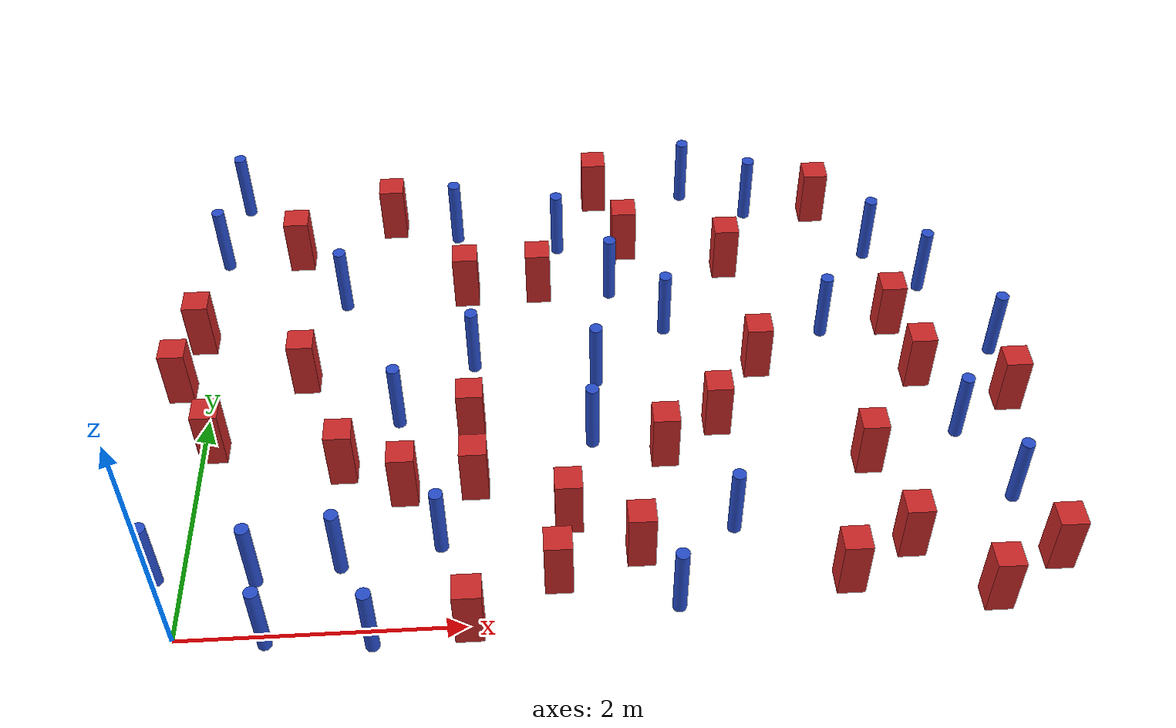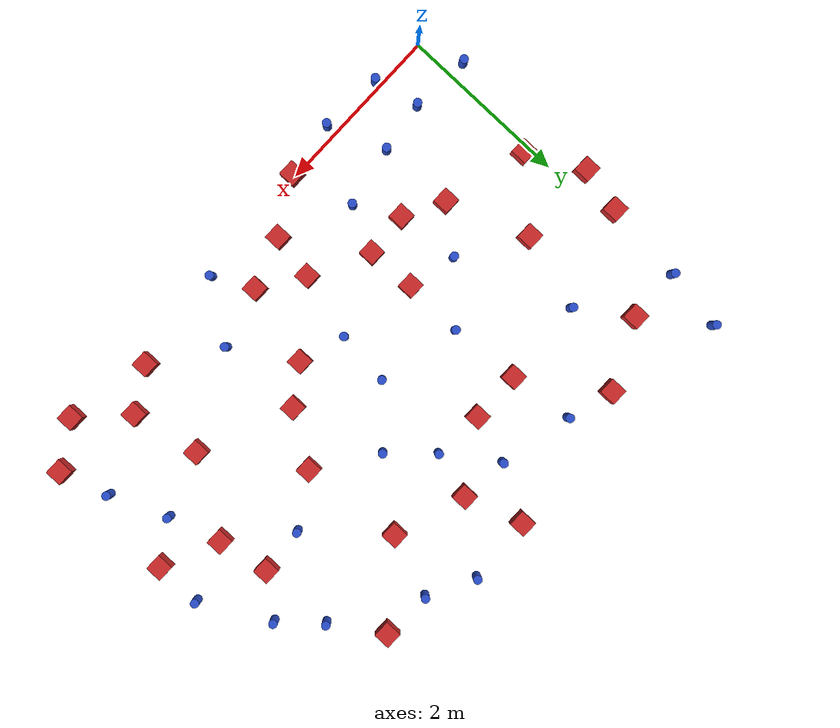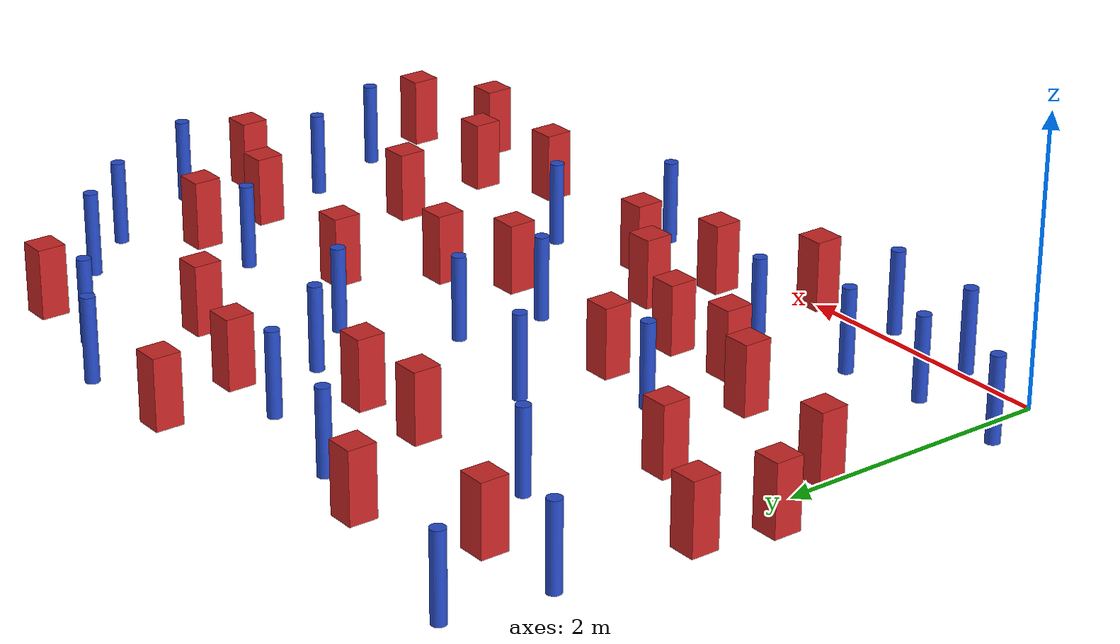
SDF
<sdf version="1.6">
 <model name="dense_64">
  <model name="pole_obstacle0">
   <static>true</static>
   <pose>2.04700699149 2.47416205247 2.88873142074e-08 -9.9053669043e-09 4.60219948975e-07 -1.2096599497e-07</pose>
   <link name="link">
    <pose>0 0 0.3 0 -0 0</pose>
    <inertial>
     <mass>1</mass>
     <inertia><ixx>0.145833</ixx><ixy>0</ixy><ixz>0</ixz><iyy>0.145833</iyy><iyz>0</iyz><izz>0.125</izz></inertia>
    </inertial>
    <collision name="collision">
     <geometry><cylinder><radius>0.05</radius><length>.6</length></cylinder></geometry>
    </collision>
    <visual name="visual">
     <geometry><cylinder><radius>0.05</radius><length>.6</length></cylinder></geometry>
     <material>
      <script><name>Gazebo/Blue</name><uri>file://media/materials/scripts/gazebo.material</uri></script>
     </material>
    </visual>
   </link>
  </model>
  <model name="square_post_obstacle2">
   <static>true</static>
   <pose>1.36068984229 4.20448335055 8.22691968438e-08 7.2212513382e-06 -7.54495500217e-07 2.29674213826e-05</pose>
   <link name="link">
    <pose>0 0 0.25 0 -0 0</pose>
    <inertial>
     <mass>100</mass>
     <inertia>
      <ixx>0.166667</ixx>
      <ixy>0</ixy>
      <ixz>0</ixz>
      <iyy>0.166667</iyy>
      <iyz>0</iyz>
      <izz>0.166667</izz>
     </inertia>
    </inertial>
    <collision name="collision"><geometry><box><size>.2 .2 .5</size></box></geometry></collision>
    <visual name="visual">
     <geometry><box><size>.2 .2 .5</size></box></geometry>
     <material>
      <script><name>Gazebo/Red</name><uri>file://media/materials/scripts/gazebo.material</uri></script>
     </material>
    </visual>
   </link>
  </model>
  <model name="pole_obstacle9">
   <static>true</static>
   <pose>3.17217486479 3.26888968128 2.88873142074e-08 -9.90536690232e-09 4.6021994898e-07 -1.20965994968e-07</pose>
   <link name="link">
    <pose>0 0 0.3 0 -0 0</pose>
    <inertial>
     <mass>1</mass>
     <inertia><ixx>0.145833</ixx><ixy>0</ixy><ixz>0</ixz><iyy>0.145833</iyy><iyz>0</iyz><izz>0.125</izz></inertia>
    </inertial>
    <collision name="collision">
     <geometry><cylinder><radius>0.05</radius><length>.6</length></cylinder></geometry>
    </collision>
    <visual name="visual">
     <geometry><cylinder><radius>0.05</radius><length>.6</length></cylinder></geometry>
     <material>
      <script><name>Gazebo/Blue</name><uri>file://media/materials/scripts/gazebo.material</uri></script>
     </material>
    </visual>
   </link>
  </model>
  <model name="square_post_obstacle18">
   <static>true</static>
   <pose>1.98810374156 3.29738425178 8.22691968438e-08 7.2212513382e-06 -7.54495500217e-07 2.29674213826e-05</pose>
   <link name="link">
    <pose>0 0 0.25 0 -0 0</pose>
    <inertial>
     <mass>100</mass>
     <inertia>
      <ixx>0.166667</ixx>
      <ixy>0</ixy>
      <ixz>0</ixz>
      <iyy>0.166667</iyy>
      <iyz>0</iyz>
      <izz>0.166667</izz>
     </inertia>
    </inertial>
    <collision name="collision"><geometry><box><size>.2 .2 .5</size></box></geometry></collision>
    <visual name="visual">
     <geometry><box><size>.2 .2 .5</size></box></geometry>
     <material>
      <script><name>Gazebo/Red</name><uri>file://media/materials/scripts/gazebo.material</uri></script>
     </material>
    </visual>
   </link>
  </model>
  <model name="pole_obstacle29">
   <static>true</static>
   <pose>2.76001645663 3.85796387029 2.88873142074e-08 -9.90536690232e-09 4.6021994898e-07 -1.20965994968e-07</pose>
   <link name="link">
    <pose>0 0 0.3 0 -0 0</pose>
    <inertial>
     <mass>1</mass>
     <inertia><ixx>0.145833</ixx><ixy>0</ixy><ixz>0</ixz><iyy>0.145833</iyy><iyz>0</iyz><izz>0.125</izz></inertia>
    </inertial>
    <collision name="collision">
     <geometry><cylinder><radius>0.05</radius><length>.6</length></cylinder></geometry>
    </collision>
    <visual name="visual">
     <geometry><cylinder><radius>0.05</radius><length>.6</length></cylinder></geometry>
     <material>
      <script><name>Gazebo/Blue</name><uri>file://media/materials/scripts/gazebo.material</uri></script>
     </material>
    </visual>
   </link>
  </model>
  <model name="square_post_obstacle22">
   <static>true</static>
   <pose>5.52658757177 2.16464236272 8.22691968438e-08 7.2212513382e-06 -7.54495500217e-07 2.29674213826e-05</pose>
   <link name="link">
    <pose>0 0 0.25 0 -0 0</pose>
    <inertial>
     <mass>100</mass>
     <inertia>
      <ixx>0.166667</ixx>
      <ixy>0</ixy>
      <ixz>0</ixz>
      <iyy>0.166667</iyy>
      <iyz>0</iyz>
      <izz>0.166667</izz>
     </inertia>
    </inertial>
    <collision name="collision"><geometry><box><size>.2 .2 .5</size></box></geometry></collision>
    <visual name="visual">
     <geometry><box><size>.2 .2 .5</size></box></geometry>
     <material>
      <script><name>Gazebo/Red</name><uri>file://media/materials/scripts/gazebo.material</uri></script>
     </material>
    </visual>
   </link>
  </model>
  <model name="square_post_obstacle24">
   <static>true</static>
   <pose>2.05270713327 1.21254585501 8.22691968438e-08 7.2212513382e-06 -7.54495500217e-07 2.29674213826e-05</pose>
   <link name="link">
    <pose>0 0 0.25 0 -0 0</pose>
    <inertial>
     <mass>100</mass>
     <inertia>
      <ixx>0.166667</ixx>
      <ixy>0</ixy>
      <ixz>0</ixz>
      <iyy>0.166667</iyy>
      <iyz>0</iyz>
      <izz>0.166667</izz>
     </inertia>
    </inertial>
    <collision name="collision"><geometry><box><size>.2 .2 .5</size></box></geometry></collision>
    <visual name="visual">
     <geometry><box><size>.2 .2 .5</size></box></geometry>
     <material>
      <script><name>Gazebo/Red</name><uri>file://media/materials/scripts/gazebo.material</uri></script>
     </material>
    </visual>
   </link>
  </model>
  <model name="square_post_obstacle26">
   <static>true</static>
   <pose>-0.128524485465 2.85255286279 8.22691968438e-08 7.22125133819e-06 -7.54495500217e-07 2.29674213826e-05</pose>
   <link name="link">
    <pose>0 0 0.25 0 -0 0</pose>
    <inertial>
     <mass>100</mass>
     <inertia>
      <ixx>0.166667</ixx>
      <ixy>0</ixy>
      <ixz>0</ixz>
      <iyy>0.166667</iyy>
      <iyz>0</iyz>
      <izz>0.166667</izz>
     </inertia>
    </inertial>
    <collision name="collision"><geometry><box><size>.2 .2 .5</size></box></geometry></collision>
    <visual name="visual">
     <geometry><box><size>.2 .2 .5</size></box></geometry>
     <material>
      <script><name>Gazebo/Red</name><uri>file://media/materials/scripts/gazebo.material</uri></script>
     </material>
    </visual>
   </link>
  </model>
  <model name="pole_obstacle37">
   <static>true</static>
   <pose>4.43301625124 4.24000492616 2.88873142074e-08 -9.90536690842e-09 4.60219948965e-07 -1.20965994976e-07</pose>
   <link name="link">
    <pose>0 0 0.3 0 -0 0</pose>
    <inertial>
     <mass>1</mass>
     <inertia><ixx>0.145833</ixx><ixy>0</ixy><ixz>0</ixz><iyy>0.145833</iyy><iyz>0</iyz><izz>0.125</izz></inertia>
    </inertial>
    <collision name="collision">
     <geometry><cylinder><radius>0.05</radius><length>.6</length></cylinder></geometry>
    </collision>
    <visual name="visual">
     <geometry><cylinder><radius>0.05</radius><length>.6</length></cylinder></geometry>
     <material>
      <script><name>Gazebo/Blue</name><uri>file://media/materials/scripts/gazebo.material</uri></script>
     </material>
    </visual>
   </link>
  </model>
  <model name="pole_obstacle41">
   <static>true</static>
   <pose>0.0548721989412 4.52824444589 2.88873142074e-08 -9.90536689796e-09 4.6021994899e-07 -1.20965994961e-07</pose>
   <link name="link">
    <pose>0 0 0.3 0 -0 0</pose>
    <inertial>
     <mass>1</mass>
     <inertia><ixx>0.145833</ixx><ixy>0</ixy><ixz>0</ixz><iyy>0.145833</iyy><iyz>0</iyz><izz>0.125</izz></inertia>
    </inertial>
    <collision name="collision">
     <geometry><cylinder><radius>0.05</radius><length>.6</length></cylinder></geometry>
    </collision>
    <visual name="visual">
     <geometry><cylinder><radius>0.05</radius><length>.6</length></cylinder></geometry>
     <material>
      <script><name>Gazebo/Blue</name><uri>file://media/materials/scripts/gazebo.material</uri></script>
     </material>
    </visual>
   </link>
  </model>
  <model name="pole_obstacle51">
   <static>true</static>
   <pose>5.99897427531 0.909110615569 2.88873142074e-08 -9.90536689837e-09 4.60219948989e-07 -1.2096599496e-07</pose>
   <link name="link">
    <pose>0 0 0.3 0 -0 0</pose>
    <inertial>
     <mass>1</mass>
     <inertia><ixx>0.145833</ixx><ixy>0</ixy><ixz>0</ixz><iyy>0.145833</iyy><iyz>0</iyz><izz>0.125</izz></inertia>
    </inertial>
    <collision name="collision">
     <geometry><cylinder><radius>0.05</radius><length>.6</length></cylinder></geometry>
    </collision>
    <visual name="visual">
     <geometry><cylinder><radius>0.05</radius><length>.6</length></cylinder></geometry>
     <material>
      <script><name>Gazebo/Blue</name><uri>file://media/materials/scripts/gazebo.material</uri></script>
     </material>
    </visual>
   </link>
  </model>
  <model name="pole_obstacle56">
   <static>true</static>
   <pose>-0.0502757166644 3.80982067164 2.88873142074e-08 -9.90536692535e-09 4.60219948925e-07 -1.2096599499e-07</pose>
   <link name="link">
    <pose>0 0 0.3 0 -0 0</pose>
    <inertial>
     <mass>1</mass>
     <inertia><ixx>0.145833</ixx><ixy>0</ixy><ixz>0</ixz><iyy>0.145833</iyy><iyz>0</iyz><izz>0.125</izz></inertia>
    </inertial>
    <collision name="collision">
     <geometry><cylinder><radius>0.05</radius><length>.6</length></cylinder></geometry>
    </collision>
    <visual name="visual">
     <geometry><cylinder><radius>0.05</radius><length>.6</length></cylinder></geometry>
     <material>
      <script><name>Gazebo/Blue</name><uri>file://media/materials/scripts/gazebo.material</uri></script>
     </material>
    </visual>
   </link>
  </model>
  <model name="square_post_obstacle48">
   <static>true</static>
   <pose>2.01360972355 -0.0227876225214 8.22691968438e-08 7.2212513382e-06 -7.54495500217e-07 2.29674213826e-05</pose>
   <link name="link">
    <pose>0 0 0.25 0 -0 0</pose>
    <inertial>
     <mass>100</mass>
     <inertia>
      <ixx>0.166667</ixx>
      <ixy>0</ixy>
      <ixz>0</ixz>
      <iyy>0.166667</iyy>
      <iyz>0</iyz>
      <izz>0.166667</izz>
     </inertia>
    </inertial>
    <collision name="collision"><geometry><box><size>.2 .2 .5</size></box></geometry></collision>
    <visual name="visual">
     <geometry><box><size>.2 .2 .5</size></box></geometry>
     <material>
      <script><name>Gazebo/Red</name><uri>file://media/materials/scripts/gazebo.material</uri></script>
     </material>
    </visual>
   </link>
  </model>
  <model name="pole_obstacle67">
   <static>true</static>
   <pose>3.88883415241 4.51918012956 2.88873142074e-08 -9.90536689859e-09 4.60219948989e-07 -1.20965994961e-07</pose>
   <link name="link">
    <pose>0 0 0.3 0 -0 0</pose>
    <inertial>
     <mass>1</mass>
     <inertia><ixx>0.145833</ixx><ixy>0</ixy><ixz>0</ixz><iyy>0.145833</iyy><iyz>0</iyz><izz>0.125</izz></inertia>
    </inertial>
    <collision name="collision">
     <geometry><cylinder><radius>0.05</radius><length>.6</length></cylinder></geometry>
    </collision>
    <visual name="visual">
     <geometry><cylinder><radius>0.05</radius><length>.6</length></cylinder></geometry>
     <material>
      <script><name>Gazebo/Blue</name><uri>file://media/materials/scripts/gazebo.material</uri></script>
     </material>
    </visual>
   </link>
  </model>
  <model name="square_post_obstacle61">
   <static>true</static>
   <pose>3.10391664014 4.47095767798 8.22691968438e-08 7.2212513382e-06 -7.54495500217e-07 2.29674213826e-05</pose>
   <link name="link">
    <pose>0 0 0.25 0 -0 0</pose>
    <inertial>
     <mass>100</mass>
     <inertia>
      <ixx>0.166667</ixx>
      <ixy>0</ixy>
      <ixz>0</ixz>
      <iyy>0.166667</iyy>
      <iyz>0</iyz>
      <izz>0.166667</izz>
     </inertia>
    </inertial>
    <collision name="collision"><geometry><box><size>.2 .2 .5</size></box></geometry></collision>
    <visual name="visual">
     <geometry><box><size>.2 .2 .5</size></box></geometry>
     <material>
      <script><name>Gazebo/Red</name><uri>file://media/materials/scripts/gazebo.material</uri></script>
     </material>
    </visual>
   </link>
  </model>
  <model name="square_post_obstacle62">
   <static>true</static>
   <pose>1.53595217497 1.17966994749 8.22691968438e-08 7.2212513382e-06 -7.54495500217e-07 2.29674213826e-05</pose>
   <link name="link">
    <pose>0 0 0.25 0 -0 0</pose>
    <inertial>
     <mass>100</mass>
     <inertia>
      <ixx>0.166667</ixx>
      <ixy>0</ixy>
      <ixz>0</ixz>
      <iyy>0.166667</iyy>
      <iyz>0</iyz>
      <izz>0.166667</izz>
     </inertia>
    </inertial>
    <collision name="collision"><geometry><box><size>.2 .2 .5</size></box></geometry></collision>
    <visual name="visual">
     <geometry><box><size>.2 .2 .5</size></box></geometry>
     <material>
      <script><name>Gazebo/Red</name><uri>file://media/materials/scripts/gazebo.material</uri></script>
     </material>
    </visual>
   </link>
  </model>
  <model name="pole_obstacle74">
   <static>true</static>
   <pose>6.19955153348 2.42457569844 2.88873142074e-08 -9.90536690245e-09 4.6021994898e-07 -1.20965994966e-07</pose>
   <link name="link">
    <pose>0 0 0.3 0 -0 0</pose>
    <inertial>
     <mass>1</mass>
     <inertia><ixx>0.145833</ixx><ixy>0</ixy><ixz>0</ixz><iyy>0.145833</iyy><iyz>0</iyz><izz>0.125</izz></inertia>
    </inertial>
    <collision name="collision">
     <geometry><cylinder><radius>0.05</radius><length>.6</length></cylinder></geometry>
    </collision>
    <visual name="visual">
     <geometry><cylinder><radius>0.05</radius><length>.6</length></cylinder></geometry>
     <material>
      <script><name>Gazebo/Blue</name><uri>file://media/materials/scripts/gazebo.material</uri></script>
     </material>
    </visual>
   </link>
  </model>
  <model name="pole_obstacle75">
   <static>true</static>
   <pose>5.77782669383 3.20611365357 2.88873142074e-08 -9.90536690245e-09 4.6021994898e-07 -1.20965994966e-07</pose>
   <link name="link">
    <pose>0 0 0.3 0 -0 0</pose>
    <inertial>
     <mass>1</mass>
     <inertia><ixx>0.145833</ixx><ixy>0</ixy><ixz>0</ixz><iyy>0.145833</iyy><iyz>0</iyz><izz>0.125</izz></inertia>
    </inertial>
    <collision name="collision">
     <geometry><cylinder><radius>0.05</radius><length>.6</length></cylinder></geometry>
    </collision>
    <visual name="visual">
     <geometry><cylinder><radius>0.05</radius><length>.6</length></cylinder></geometry>
     <material>
      <script><name>Gazebo/Blue</name><uri>file://media/materials/scripts/gazebo.material</uri></script>
     </material>
    </visual>
   </link>
  </model>
  <model name="square_post_obstacle66">
   <static>true</static>
   <pose>3.32431469081 3.80321081166 8.22691968438e-08 7.2212513382e-06 -7.54495500217e-07 2.29674213826e-05</pose>
   <link name="link">
    <pose>0 0 0.25 0 -0 0</pose>
    <inertial>
     <mass>100</mass>
     <inertia>
      <ixx>0.166667</ixx>
      <ixy>0</ixy>
      <ixz>0</ixz>
      <iyy>0.166667</iyy>
      <iyz>0</iyz>
      <izz>0.166667</izz>
     </inertia>
    </inertial>
    <collision name="collision"><geometry><box><size>.2 .2 .5</size></box></geometry></collision>
    <visual name="visual">
     <geometry><box><size>.2 .2 .5</size></box></geometry>
     <material>
      <script><name>Gazebo/Red</name><uri>file://media/materials/scripts/gazebo.material</uri></script>
     </material>
    </visual>
   </link>
  </model>
  <model name="square_post_obstacle72">
   <static>true</static>
   <pose>4.66032250065 0.225684437883 8.22691968438e-08 7.2212513382e-06 -7.54495500217e-07 2.29674213826e-05</pose>
   <link name="link">
    <pose>0 0 0.25 0 -0 0</pose>
    <inertial>
     <mass>100</mass>
     <inertia>
      <ixx>0.166667</ixx>
      <ixy>0</ixy>
      <ixz>0</ixz>
      <iyy>0.166667</iyy>
      <iyz>0</iyz>
      <izz>0.166667</izz>
     </inertia>
    </inertial>
    <collision name="collision"><geometry><box><size>.2 .2 .5</size></box></geometry></collision>
    <visual name="visual">
     <geometry><box><size>.2 .2 .5</size></box></geometry>
     <material>
      <script><name>Gazebo/Red</name><uri>file://media/materials/scripts/gazebo.material</uri></script>
     </material>
    </visual>
   </link>
  </model>
  <model name="pole_obstacle85">
   <static>true</static>
   <pose>5.72441869837 1.56464164884 2.88873142074e-08 -9.90536689445e-09 4.60219948999e-07 -1.20965994956e-07</pose>
   <link name="link">
    <pose>0 0 0.3 0 -0 0</pose>
    <inertial>
     <mass>1</mass>
     <inertia><ixx>0.145833</ixx><ixy>0</ixy><ixz>0</ixz><iyy>0.145833</iyy><iyz>0</iyz><izz>0.125</izz></inertia>
    </inertial>
    <collision name="collision">
     <geometry><cylinder><radius>0.05</radius><length>.6</length></cylinder></geometry>
    </collision>
    <visual name="visual">
     <geometry><cylinder><radius>0.05</radius><length>.6</length></cylinder></geometry>
     <material>
      <script><name>Gazebo/Blue</name><uri>file://media/materials/scripts/gazebo.material</uri></script>
     </material>
    </visual>
   </link>
  </model>
  <model name="square_post_obstacle74">
   <static>true</static>
   <pose>3.22321845449 0.540519343599 8.22691968438e-08 7.2212513382e-06 -7.54495500217e-07 2.29674213826e-05</pose>
   <link name="link">
    <pose>0 0 0.25 0 -0 0</pose>
    <inertial>
     <mass>100</mass>
     <inertia>
      <ixx>0.166667</ixx>
      <ixy>0</ixy>
      <ixz>0</ixz>
      <iyy>0.166667</iyy>
      <iyz>0</iyz>
      <izz>0.166667</izz>
     </inertia>
    </inertial>
    <collision name="collision"><geometry><box><size>.2 .2 .5</size></box></geometry></collision>
    <visual name="visual">
     <geometry><box><size>.2 .2 .5</size></box></geometry>
     <material>
      <script><name>Gazebo/Red</name><uri>file://media/materials/scripts/gazebo.material</uri></script>
     </material>
    </visual>
   </link>
  </model>
  <model name="pole_obstacle88">
   <static>true</static>
   <pose>3.58993427599 2.8113896839 2.88873142074e-08 -9.90536690232e-09 4.6021994898e-07 -1.20965994968e-07</pose>
   <link name="link">
    <pose>0 0 0.3 0 -0 0</pose>
    <inertial>
     <mass>1</mass>
     <inertia><ixx>0.145833</ixx><ixy>0</ixy><ixz>0</ixz><iyy>0.145833</iyy><iyz>0</iyz><izz>0.125</izz></inertia>
    </inertial>
    <collision name="collision">
     <geometry><cylinder><radius>0.05</radius><length>.6</length></cylinder></geometry>
    </collision>
    <visual name="visual">
     <geometry><cylinder><radius>0.05</radius><length>.6</length></cylinder></geometry>
     <material>
      <script><name>Gazebo/Blue</name><uri>file://media/materials/scripts/gazebo.material</uri></script>
     </material>
    </visual>
   </link>
  </model>
  <model name="square_post_obstacle75">
   <static>true</static>
   <pose>5.01402339134 4.21396589467 8.22691968438e-08 7.2212513382e-06 -7.54495500217e-07 2.29674213826e-05</pose>
   <link name="link">
    <pose>0 0 0.25 0 -0 0</pose>
    <inertial>
     <mass>100</mass>
     <inertia>
      <ixx>0.166667</ixx>
      <ixy>0</ixy>
      <ixz>0</ixz>
      <iyy>0.166667</iyy>
      <iyz>0</iyz>
      <izz>0.166667</izz>
     </inertia>
    </inertial>
    <collision name="collision"><geometry><box><size>.2 .2 .5</size></box></geometry></collision>
    <visual name="visual">
     <geometry><box><size>.2 .2 .5</size></box></geometry>
     <material>
      <script><name>Gazebo/Red</name><uri>file://media/materials/scripts/gazebo.material</uri></script>
     </material>
    </visual>
   </link>
  </model>
  <model name="square_post_obstacle77">
   <static>true</static>
   <pose>0.730202555262 2.36754736703 8.22691968438e-08 7.2212513382e-06 -7.54495500217e-07 2.29674213826e-05</pose>
   <link name="link">
    <pose>0 0 0.25 0 -0 0</pose>
    <inertial>
     <mass>100</mass>
     <inertia>
      <ixx>0.166667</ixx>
      <ixy>0</ixy>
      <ixz>0</ixz>
      <iyy>0.166667</iyy>
      <iyz>0</iyz>
      <izz>0.166667</izz>
     </inertia>
    </inertial>
    <collision name="collision"><geometry><box><size>.2 .2 .5</size></box></geometry></collision>
    <visual name="visual">
     <geometry><box><size>.2 .2 .5</size></box></geometry>
     <material>
      <script><name>Gazebo/Red</name><uri>file://media/materials/scripts/gazebo.material</uri></script>
     </material>
    </visual>
   </link>
  </model>
  <model name="square_post_obstacle78">
   <static>true</static>
   <pose>4.28103848278 2.34072129161 8.22691968438e-08 7.2212513382e-06 -7.54495500217e-07 2.29674213826e-05</pose>
   <link name="link">
    <pose>0 0 0.25 0 -0 0</pose>
    <inertial>
     <mass>100</mass>
     <inertia>
      <ixx>0.166667</ixx>
      <ixy>0</ixy>
      <ixz>0</ixz>
      <iyy>0.166667</iyy>
      <iyz>0</iyz>
      <izz>0.166667</izz>
     </inertia>
    </inertial>
    <collision name="collision"><geometry><box><size>.2 .2 .5</size></box></geometry></collision>
    <visual name="visual">
     <geometry><box><size>.2 .2 .5</size></box></geometry>
     <material>
      <script><name>Gazebo/Red</name><uri>file://media/materials/scripts/gazebo.material</uri></script>
     </material>
    </visual>
   </link>
  </model>
  <model name="square_post_obstacle87">
   <static>true</static>
   <pose>5.6533069034 0.025624023455 8.22691968438e-08 7.2212513382e-06 -7.54495500217e-07 2.29674213826e-05</pose>
   <link name="link">
    <pose>0 0 0.25 0 -0 0</pose>
    <inertial>
     <mass>100</mass>
     <inertia>
      <ixx>0.166667</ixx>
      <ixy>0</ixy>
      <ixz>0</ixz>
      <iyy>0.166667</iyy>
      <iyz>0</iyz>
      <izz>0.166667</izz>
     </inertia>
    </inertial>
    <collision name="collision"><geometry><box><size>.2 .2 .5</size></box></geometry></collision>
    <visual name="visual">
     <geometry><box><size>.2 .2 .5</size></box></geometry>
     <material>
      <script><name>Gazebo/Red</name><uri>file://media/materials/scripts/gazebo.material</uri></script>
     </material>
    </visual>
   </link>
  </model>
  <model name="square_post_obstacle92">
   <static>true</static>
   <pose>3.47308781892 1.4529752627 8.22691968438e-08 7.2212513382e-06 -7.54495500217e-07 2.29674213826e-05</pose>
   <link name="link">
    <pose>0 0 0.25 0 -0 0</pose>
    <inertial>
     <mass>100</mass>
     <inertia>
      <ixx>0.166667</ixx>
      <ixy>0</ixy>
      <ixz>0</ixz>
      <iyy>0.166667</iyy>
      <iyz>0</iyz>
      <izz>0.166667</izz>
     </inertia>
    </inertial>
    <collision name="collision"><geometry><box><size>.2 .2 .5</size></box></geometry></collision>
    <visual name="visual">
     <geometry><box><size>.2 .2 .5</size></box></geometry>
     <material>
      <script><name>Gazebo/Red</name><uri>file://media/materials/scripts/gazebo.material</uri></script>
     </material>
    </visual>
   </link>
  </model>
  <model name="square_post_obstacle93">
   <static>true</static>
   <pose>4.16055816285 3.52481038271 8.22691968438e-08 7.2212513382e-06 -7.54495500217e-07 2.29674213826e-05</pose>
   <link name="link">
    <pose>0 0 0.25 0 -0 0</pose>
    <inertial>
     <mass>100</mass>
     <inertia>
      <ixx>0.166667</ixx>
      <ixy>0</ixy>
      <ixz>0</ixz>
      <iyy>0.166667</iyy>
      <iyz>0</iyz>
      <izz>0.166667</izz>
     </inertia>
    </inertial>
    <collision name="collision"><geometry><box><size>.2 .2 .5</size></box></geometry></collision>
    <visual name="visual">
     <geometry><box><size>.2 .2 .5</size></box></geometry>
     <material>
      <script><name>Gazebo/Red</name><uri>file://media/materials/scripts/gazebo.material</uri></script>
     </material>
    </visual>
   </link>
  </model>
  <model name="square_post_obstacle97">
   <static>true</static>
   <pose>4.98667365181 1.29990823488 8.22691968438e-08 7.2212513382e-06 -7.54495500217e-07 2.29674213826e-05</pose>
   <link name="link">
    <pose>0 0 0.25 0 -0 0</pose>
    <inertial>
     <mass>100</mass>
     <inertia>
      <ixx>0.166667</ixx>
      <ixy>0</ixy>
      <ixz>0</ixz>
      <iyy>0.166667</iyy>
      <iyz>0</iyz>
      <izz>0.166667</izz>
     </inertia>
    </inertial>
    <collision name="collision"><geometry><box><size>.2 .2 .5</size></box></geometry></collision>
    <visual name="visual">
     <geometry><box><size>.2 .2 .5</size></box></geometry>
     <material>
      <script><name>Gazebo/Red</name><uri>file://media/materials/scripts/gazebo.material</uri></script>
     </material>
    </visual>
   </link>
  </model>
  <model name="pole_obstacle102">
   <static>true</static>
   <pose>1.80795532922 0.692106188163 2.88873142074e-08 -9.90536689692e-09 4.60219948993e-07 -1.20965994958e-07</pose>
   <link name="link">
    <pose>0 0 0.3 0 -0 0</pose>
    <inertial>
     <mass>1</mass>
     <inertia><ixx>0.145833</ixx><ixy>0</ixy><ixz>0</ixz><iyy>0.145833</iyy><iyz>0</iyz><izz>0.125</izz></inertia>
    </inertial>
    <collision name="collision">
     <geometry><cylinder><radius>0.05</radius><length>.6</length></cylinder></geometry>
    </collision>
    <visual name="visual">
     <geometry><cylinder><radius>0.05</radius><length>.6</length></cylinder></geometry>
     <material>
      <script><name>Gazebo/Blue</name><uri>file://media/materials/scripts/gazebo.material</uri></script>
     </material>
    </visual>
   </link>
  </model>
  <model name="pole_obstacle105">
   <static>true</static>
   <pose>5.39432647153 3.64181544365 2.88873142074e-08 -9.90536690245e-09 4.6021994898e-07 -1.20965994966e-07</pose>
   <link name="link">
    <pose>0 0 0.3 0 -0 0</pose>
    <inertial>
     <mass>1</mass>
     <inertia><ixx>0.145833</ixx><ixy>0</ixy><ixz>0</ixz><iyy>0.145833</iyy><iyz>0</iyz><izz>0.125</izz></inertia>
    </inertial>
    <collision name="collision">
     <geometry><cylinder><radius>0.05</radius><length>.6</length></cylinder></geometry>
    </collision>
    <visual name="visual">
     <geometry><cylinder><radius>0.05</radius><length>.6</length></cylinder></geometry>
     <material>
      <script><name>Gazebo/Blue</name><uri>file://media/materials/scripts/gazebo.material</uri></script>
     </material>
    </visual>
   </link>
  </model>
  <model name="pole_obstacle110">
   <static>true</static>
   <pose>3.00503588919 2.25406335023 2.88873142074e-08 -9.90536690232e-09 4.6021994898e-07 -1.20965994968e-07</pose>
   <link name="link">
    <pose>0 0 0.3 0 -0 0</pose>
    <inertial>
     <mass>1</mass>
     <inertia><ixx>0.145833</ixx><ixy>0</ixy><ixz>0</ixz><iyy>0.145833</iyy><iyz>0</iyz><izz>0.125</izz></inertia>
    </inertial>
    <collision name="collision">
     <geometry><cylinder><radius>0.05</radius><length>.6</length></cylinder></geometry>
    </collision>
    <visual name="visual">
     <geometry><cylinder><radius>0.05</radius><length>.6</length></cylinder></geometry>
     <material>
      <script><name>Gazebo/Blue</name><uri>file://media/materials/scripts/gazebo.material</uri></script>
     </material>
    </visual>
   </link>
  </model>
  <model name="square_post_obstacle105">
   <static>true</static>
   <pose>1.07665702237 1.42231649695 8.22691968438e-08 7.2212513382e-06 -7.54495500217e-07 2.29674213826e-05</pose>
   <link name="link">
    <pose>0 0 0.25 0 -0 0</pose>
    <inertial>
     <mass>100</mass>
     <inertia>
      <ixx>0.166667</ixx>
      <ixy>0</ixy>
      <ixz>0</ixz>
      <iyy>0.166667</iyy>
      <iyz>0</iyz>
      <izz>0.166667</izz>
     </inertia>
    </inertial>
    <collision name="collision"><geometry><box><size>.2 .2 .5</size></box></geometry></collision>
    <visual name="visual">
     <geometry><box><size>.2 .2 .5</size></box></geometry>
     <material>
      <script><name>Gazebo/Red</name><uri>file://media/materials/scripts/gazebo.material</uri></script>
     </material>
    </visual>
   </link>
  </model>
  <model name="square_post_obstacle106">
   <static>true</static>
   <pose>5.41259375243 2.75678490365 8.22691968438e-08 7.2212513382e-06 -7.54495500217e-07 2.29674213826e-05</pose>
   <link name="link">
    <pose>0 0 0.25 0 -0 0</pose>
    <inertial>
     <mass>100</mass>
     <inertia>
      <ixx>0.166667</ixx>
      <ixy>0</ixy>
      <ixz>0</ixz>
      <iyy>0.166667</iyy>
      <iyz>0</iyz>
      <izz>0.166667</izz>
     </inertia>
    </inertial>
    <collision name="collision"><geometry><box><size>.2 .2 .5</size></box></geometry></collision>
    <visual name="visual">
     <geometry><box><size>.2 .2 .5</size></box></geometry>
     <material>
      <script><name>Gazebo/Red</name><uri>file://media/materials/scripts/gazebo.material</uri></script>
     </material>
    </visual>
   </link>
  </model>
  <model name="square_post_obstacle119">
   <static>true</static>
   <pose>-0.238910838458 2.32340931517 8.22691968438e-08 7.2212513382e-06 -7.54495500217e-07 2.29674213826e-05</pose>
   <link name="link">
    <pose>0 0 0.25 0 -0 0</pose>
    <inertial>
     <mass>100</mass>
     <inertia>
      <ixx>0.166667</ixx>
      <ixy>0</ixy>
      <ixz>0</ixz>
      <iyy>0.166667</iyy>
      <iyz>0</iyz>
      <izz>0.166667</izz>
     </inertia>
    </inertial>
    <collision name="collision"><geometry><box><size>.2 .2 .5</size></box></geometry></collision>
    <visual name="visual">
     <geometry><box><size>.2 .2 .5</size></box></geometry>
     <material>
      <script><name>Gazebo/Red</name><uri>file://media/materials/scripts/gazebo.material</uri></script>
     </material>
    </visual>
   </link>
  </model>
  <model name="pole_obstacle120">
   <static>true</static>
   <pose>4.86792853058 2.71442543391 2.88873142074e-08 -9.90536690245e-09 4.6021994898e-07 -1.20965994966e-07</pose>
   <link name="link">
    <pose>0 0 0.3 0 -0 0</pose>
    <inertial>
     <mass>1</mass>
     <inertia><ixx>0.145833</ixx><ixy>0</ixy><ixz>0</ixz><iyy>0.145833</iyy><iyz>0</iyz><izz>0.125</izz></inertia>
    </inertial>
    <collision name="collision">
     <geometry><cylinder><radius>0.05</radius><length>.6</length></cylinder></geometry>
    </collision>
    <visual name="visual">
     <geometry><cylinder><radius>0.05</radius><length>.6</length></cylinder></geometry>
     <material>
      <script><name>Gazebo/Blue</name><uri>file://media/materials/scripts/gazebo.material</uri></script>
     </material>
    </visual>
   </link>
  </model>
  <model name="pole_obstacle125">
   <static>true</static>
   <pose>3.91704493238 0.74337601912 2.88873142074e-08 -9.90536689285e-09 4.60219949002e-07 -1.20965994953e-07</pose>
   <link name="link">
    <pose>0 0 0.3 0 -0 0</pose>
    <inertial>
     <mass>1</mass>
     <inertia><ixx>0.145833</ixx><ixy>0</ixy><ixz>0</ixz><iyy>0.145833</iyy><iyz>0</iyz><izz>0.125</izz></inertia>
    </inertial>
    <collision name="collision">
     <geometry><cylinder><radius>0.05</radius><length>.6</length></cylinder></geometry>
    </collision>
    <visual name="visual">
     <geometry><cylinder><radius>0.05</radius><length>.6</length></cylinder></geometry>
     <material>
      <script><name>Gazebo/Blue</name><uri>file://media/materials/scripts/gazebo.material</uri></script>
     </material>
    </visual>
   </link>
  </model>
  <model name="square_post_obstacle124">
   <static>true</static>
   <pose>3.89931540809 1.74521477832 8.22691968438e-08 7.2212513382e-06 -7.54495500217e-07 2.29674213826e-05</pose>
   <link name="link">
    <pose>0 0 0.25 0 -0 0</pose>
    <inertial>
     <mass>100</mass>
     <inertia>
      <ixx>0.166667</ixx>
      <ixy>0</ixy>
      <ixz>0</ixz>
      <iyy>0.166667</iyy>
      <iyz>0</iyz>
      <izz>0.166667</izz>
     </inertia>
    </inertial>
    <collision name="collision"><geometry><box><size>.2 .2 .5</size></box></geometry></collision>
    <visual name="visual">
     <geometry><box><size>.2 .2 .5</size></box></geometry>
     <material>
      <script><name>Gazebo/Red</name><uri>file://media/materials/scripts/gazebo.material</uri></script>
     </material>
    </visual>
   </link>
  </model>
  <model name="square_post_obstacle127">
   <static>true</static>
   <pose>6.17030028586 0.345552422571 8.22691968438e-08 7.2212513382e-06 -7.54495500217e-07 2.29674213826e-05</pose>
   <link name="link">
    <pose>0 0 0.25 0 -0 0</pose>
    <inertial>
     <mass>100</mass>
     <inertia>
      <ixx>0.166667</ixx>
      <ixy>0</ixy>
      <ixz>0</ixz>
      <iyy>0.166667</iyy>
      <iyz>0</iyz>
      <izz>0.166667</izz>
     </inertia>
    </inertial>
    <collision name="collision"><geometry><box><size>.2 .2 .5</size></box></geometry></collision>
    <visual name="visual">
     <geometry><box><size>.2 .2 .5</size></box></geometry>
     <material>
      <script><name>Gazebo/Red</name><uri>file://media/materials/scripts/gazebo.material</uri></script>
     </material>
    </visual>
   </link>
  </model>
  <model name="square_post_obstacle153">
   <static>true</static>
   <pose>0.581322403118 3.82574125524 8.22691968438e-08 7.2212513382e-06 -7.54495500217e-07 2.29674213826e-05</pose>
   <link name="link">
    <pose>0 0 0.25 0 -0 0</pose>
    <inertial>
     <mass>100</mass>
     <inertia>
      <ixx>0.166667</ixx>
      <ixy>0</ixy>
      <ixz>0</ixz>
      <iyy>0.166667</iyy>
      <iyz>0</iyz>
      <izz>0.166667</izz>
     </inertia>
    </inertial>
    <collision name="collision"><geometry><box><size>.2 .2 .5</size></box></geometry></collision>
    <visual name="visual">
     <geometry><box><size>.2 .2 .5</size></box></geometry>
     <material>
      <script><name>Gazebo/Red</name><uri>file://media/materials/scripts/gazebo.material</uri></script>
     </material>
    </visual>
   </link>
  </model>
  <model name="pole_obstacle164">
   <static>true</static>
   <pose>0.987345101135 3.2458697432 2.88873142074e-08 -9.90536689802e-09 4.6021994899e-07 -1.2096599496e-07</pose>
   <link name="link">
    <pose>0 0 0.3 0 -0 0</pose>
    <inertial>
     <mass>1</mass>
     <inertia><ixx>0.145833</ixx><ixy>0</ixy><ixz>0</ixz><iyy>0.145833</iyy><iyz>0</iyz><izz>0.125</izz></inertia>
    </inertial>
    <collision name="collision">
     <geometry><cylinder><radius>0.05</radius><length>.6</length></cylinder></geometry>
    </collision>
    <visual name="visual">
     <geometry><cylinder><radius>0.05</radius><length>.6</length></cylinder></geometry>
     <material>
      <script><name>Gazebo/Blue</name><uri>file://media/materials/scripts/gazebo.material</uri></script>
     </material>
    </visual>
   </link>
  </model>
  <model name="square_post_obstacle159">
   <static>true</static>
   <pose>2.72761019261 0.866532038285 8.22691968438e-08 7.2212513382e-06 -7.54495500217e-07 2.29674213826e-05</pose>
   <link name="link">
    <pose>0 0 0.25 0 -0 0</pose>
    <inertial>
     <mass>100</mass>
     <inertia>
      <ixx>0.166667</ixx>
      <ixy>0</ixy>
      <ixz>0</ixz>
      <iyy>0.166667</iyy>
      <iyz>0</iyz>
      <izz>0.166667</izz>
     </inertia>
    </inertial>
    <collision name="collision"><geometry><box><size>.2 .2 .5</size></box></geometry></collision>
    <visual name="visual">
     <geometry><box><size>.2 .2 .5</size></box></geometry>
     <material>
      <script><name>Gazebo/Red</name><uri>file://media/materials/scripts/gazebo.material</uri></script>
     </material>
    </visual>
   </link>
  </model>
  <model name="square_post_obstacle162">
   <static>true</static>
   <pose>0.089637728485 1.67991281268 8.22691968438e-08 7.2212513382e-06 -7.54495500217e-07 2.29674213826e-05</pose>
   <link name="link">
    <pose>0 0 0.25 0 -0 0</pose>
    <inertial>
     <mass>100</mass>
     <inertia>
      <ixx>0.166667</ixx>
      <ixy>0</ixy>
      <ixz>0</ixz>
      <iyy>0.166667</iyy>
      <iyz>0</iyz>
      <izz>0.166667</izz>
     </inertia>
    </inertial>
    <collision name="collision"><geometry><box><size>.2 .2 .5</size></box></geometry></collision>
    <visual name="visual">
     <geometry><box><size>.2 .2 .5</size></box></geometry>
     <material>
      <script><name>Gazebo/Red</name><uri>file://media/materials/scripts/gazebo.material</uri></script>
     </material>
    </visual>
   </link>
  </model>
  <model name="square_post_obstacle164">
   <static>true</static>
   <pose>2.02719836851 1.77685157642 8.22691968438e-08 7.2212513382e-06 -7.54495500217e-07 2.29674213826e-05</pose>
   <link name="link">
    <pose>0 0 0.25 0 -0 0</pose>
    <inertial>
     <mass>100</mass>
     <inertia>
      <ixx>0.166667</ixx>
      <ixy>0</ixy>
      <ixz>0</ixz>
      <iyy>0.166667</iyy>
      <iyz>0</iyz>
      <izz>0.166667</izz>
     </inertia>
    </inertial>
    <collision name="collision"><geometry><box><size>.2 .2 .5</size></box></geometry></collision>
    <visual name="visual">
     <geometry><box><size>.2 .2 .5</size></box></geometry>
     <material>
      <script><name>Gazebo/Red</name><uri>file://media/materials/scripts/gazebo.material</uri></script>
     </material>
    </visual>
   </link>
  </model>
  <model name="square_post_obstacle167">
   <static>true</static>
   <pose>2.58091779884 3.30718218412 8.22691968438e-08 7.2212513382e-06 -7.54495500217e-07 2.29674213826e-05</pose>
   <link name="link">
    <pose>0 0 0.25 0 -0 0</pose>
    <inertial>
     <mass>100</mass>
     <inertia>
      <ixx>0.166667</ixx>
      <ixy>0</ixy>
      <ixz>0</ixz>
      <iyy>0.166667</iyy>
      <iyz>0</iyz>
      <izz>0.166667</izz>
     </inertia>
    </inertial>
    <collision name="collision"><geometry><box><size>.2 .2 .5</size></box></geometry></collision>
    <visual name="visual">
     <geometry><box><size>.2 .2 .5</size></box></geometry>
     <material>
      <script><name>Gazebo/Red</name><uri>file://media/materials/scripts/gazebo.material</uri></script>
     </material>
    </visual>
   </link>
  </model>
  <model name="pole_obstacle173">
   <static>true</static>
   <pose>1.4677457407 1.90778319511 2.88873142074e-08 -9.90536689672e-09 4.60219948993e-07 -1.20965994959e-07</pose>
   <link name="link">
    <pose>0 0 0.3 0 -0 0</pose>
    <inertial>
     <mass>1</mass>
     <inertia><ixx>0.145833</ixx><ixy>0</ixy><ixz>0</ixz><iyy>0.145833</iyy><iyz>0</iyz><izz>0.125</izz></inertia>
    </inertial>
    <collision name="collision">
     <geometry><cylinder><radius>0.05</radius><length>.6</length></cylinder></geometry>
    </collision>
    <visual name="visual">
     <geometry><cylinder><radius>0.05</radius><length>.6</length></cylinder></geometry>
     <material>
      <script><name>Gazebo/Blue</name><uri>file://media/materials/scripts/gazebo.material</uri></script>
     </material>
    </visual>
   </link>
  </model>
  <model name="pole_obstacle177">
   <static>true</static>
   <pose>-0.185565888024 0.510657352898 2.88873142074e-08 -9.90536689952e-09 4.60219948986e-07 -1.20965994961e-07</pose>
   <link name="link">
    <pose>0 0 0.3 0 -0 0</pose>
    <inertial>
     <mass>1</mass>
     <inertia><ixx>0.145833</ixx><ixy>0</ixy><ixz>0</ixz><iyy>0.145833</iyy><iyz>0</iyz><izz>0.125</izz></inertia>
    </inertial>
    <collision name="collision">
     <geometry><cylinder><radius>0.05</radius><length>.6</length></cylinder></geometry>
    </collision>
    <visual name="visual">
     <geometry><cylinder><radius>0.05</radius><length>.6</length></cylinder></geometry>
     <material>
      <script><name>Gazebo/Blue</name><uri>file://media/materials/scripts/gazebo.material</uri></script>
     </material>
    </visual>
   </link>
  </model>
  <model name="pole_obstacle183">
   <static>true</static>
   <pose>1.10278882374 0.54984503695 2.88873142074e-08 -9.90536689799e-09 4.6021994899e-07 -1.20965994959e-07</pose>
   <link name="link">
    <pose>0 0 0.3 0 -0 0</pose>
    <inertial>
     <mass>1</mass>
     <inertia><ixx>0.145833</ixx><ixy>0</ixy><ixz>0</ixz><iyy>0.145833</iyy><iyz>0</iyz><izz>0.125</izz></inertia>
    </inertial>
    <collision name="collision">
     <geometry><cylinder><radius>0.05</radius><length>.6</length></cylinder></geometry>
    </collision>
    <visual name="visual">
     <geometry><cylinder><radius>0.05</radius><length>.6</length></cylinder></geometry>
     <material>
      <script><name>Gazebo/Blue</name><uri>file://media/materials/scripts/gazebo.material</uri></script>
     </material>
    </visual>
   </link>
  </model>
  <model name="square_post_obstacle184">
   <static>true</static>
   <pose>6.18875972915 1.87262995658 8.22691968438e-08 7.2212513382e-06 -7.54495500217e-07 2.29674213826e-05</pose>
   <link name="link">
    <pose>0 0 0.25 0 -0 0</pose>
    <inertial>
     <mass>100</mass>
     <inertia>
      <ixx>0.166667</ixx>
      <ixy>0</ixy>
      <ixz>0</ixz>
      <iyy>0.166667</iyy>
      <iyz>0</iyz>
      <izz>0.166667</izz>
     </inertia>
    </inertial>
    <collision name="collision"><geometry><box><size>.2 .2 .5</size></box></geometry></collision>
    <visual name="visual">
     <geometry><box><size>.2 .2 .5</size></box></geometry>
     <material>
      <script><name>Gazebo/Red</name><uri>file://media/materials/scripts/gazebo.material</uri></script>
     </material>
    </visual>
   </link>
  </model>
  <model name="square_post_obstacle196">
   <static>true</static>
   <pose>5.14694143408 0.512362330441 8.22691968438e-08 7.2212513382e-06 -7.54495500217e-07 2.29674213826e-05</pose>
   <link name="link">
    <pose>0 0 0.25 0 -0 0</pose>
    <inertial>
     <mass>100</mass>
     <inertia>
      <ixx>0.166667</ixx>
      <ixy>0</ixy>
      <ixz>0</ixz>
      <iyy>0.166667</iyy>
      <iyz>0</iyz>
      <izz>0.166667</izz>
     </inertia>
    </inertial>
    <collision name="collision"><geometry><box><size>.2 .2 .5</size></box></geometry></collision>
    <visual name="visual">
     <geometry><box><size>.2 .2 .5</size></box></geometry>
     <material>
      <script><name>Gazebo/Red</name><uri>file://media/materials/scripts/gazebo.material</uri></script>
     </material>
    </visual>
   </link>
  </model>
  <model name="square_post_obstacle197">
   <static>true</static>
   <pose>2.63284128581 0.339302861438 8.22691968438e-08 7.2212513382e-06 -7.54495500217e-07 2.29674213826e-05</pose>
   <link name="link">
    <pose>0 0 0.25 0 -0 0</pose>
    <inertial>
     <mass>100</mass>
     <inertia>
      <ixx>0.166667</ixx>
      <ixy>0</ixy>
      <ixz>0</ixz>
      <iyy>0.166667</iyy>
      <iyz>0</iyz>
      <izz>0.166667</izz>
     </inertia>
    </inertial>
    <collision name="collision"><geometry><box><size>.2 .2 .5</size></box></geometry></collision>
    <visual name="visual">
     <geometry><box><size>.2 .2 .5</size></box></geometry>
     <material>
      <script><name>Gazebo/Red</name><uri>file://media/materials/scripts/gazebo.material</uri></script>
     </material>
    </visual>
   </link>
  </model>
  <model name="pole_obstacle196">
   <static>true</static>
   <pose>3.45650822548 0.0845775917198 2.88873142074e-08 -9.90536691979e-09 4.60219948939e-07 -1.20965994984e-07</pose>
   <link name="link">
    <pose>0 0 0.3 0 -0 0</pose>
    <inertial>
     <mass>1</mass>
     <inertia><ixx>0.145833</ixx><ixy>0</ixy><ixz>0</ixz><iyy>0.145833</iyy><iyz>0</iyz><izz>0.125</izz></inertia>
    </inertial>
    <collision name="collision">
     <geometry><cylinder><radius>0.05</radius><length>.6</length></cylinder></geometry>
    </collision>
    <visual name="visual">
     <geometry><cylinder><radius>0.05</radius><length>.6</length></cylinder></geometry>
     <material>
      <script><name>Gazebo/Blue</name><uri>file://media/materials/scripts/gazebo.material</uri></script>
     </material>
    </visual>
   </link>
  </model>
  <model name="pole_obstacle210">
   <static>true</static>
   <pose>0.51175690337 0.463670898981 2.88873142074e-08 -9.9053669003e-09 4.60219948985e-07 -1.20965994962e-07</pose>
   <link name="link">
    <pose>0 0 0.3 0 -0 0</pose>
    <inertial>
     <mass>1</mass>
     <inertia><ixx>0.145833</ixx><ixy>0</ixy><ixz>0</ixz><iyy>0.145833</iyy><iyz>0</iyz><izz>0.125</izz></inertia>
    </inertial>
    <collision name="collision">
     <geometry><cylinder><radius>0.05</radius><length>.6</length></cylinder></geometry>
    </collision>
    <visual name="visual">
     <geometry><cylinder><radius>0.05</radius><length>.6</length></cylinder></geometry>
     <material>
      <script><name>Gazebo/Blue</name><uri>file://media/materials/scripts/gazebo.material</uri></script>
     </material>
    </visual>
   </link>
  </model>
  <model name="pole_obstacle226">
   <static>true</static>
   <pose>0.628203009133 -0.0613229795876 2.88873142074e-08 -9.90536689597e-09 4.60219948995e-07 -1.20965994956e-07</pose>
   <link name="link">
    <pose>0 0 0.3 0 -0 0</pose>
    <inertial>
     <mass>1</mass>
     <inertia><ixx>0.145833</ixx><ixy>0</ixy><ixz>0</ixz><iyy>0.145833</iyy><iyz>0</iyz><izz>0.125</izz></inertia>
    </inertial>
    <collision name="collision">
     <geometry><cylinder><radius>0.05</radius><length>.6</length></cylinder></geometry>
    </collision>
    <visual name="visual">
     <geometry><cylinder><radius>0.05</radius><length>.6</length></cylinder></geometry>
     <material>
      <script><name>Gazebo/Blue</name><uri>file://media/materials/scripts/gazebo.material</uri></script>
     </material>
    </visual>
   </link>
  </model>
  <model name="pole_obstacle236">
   <static>true</static>
   <pose>1.90174000913 4.05189002041 2.88873142074e-08 -9.90536689786e-09 4.6021994899e-07 -1.2096599496e-07</pose>
   <link name="link">
    <pose>0 0 0.3 0 -0 0</pose>
    <inertial>
     <mass>1</mass>
     <inertia><ixx>0.145833</ixx><ixy>0</ixy><ixz>0</ixz><iyy>0.145833</iyy><iyz>0</iyz><izz>0.125</izz></inertia>
    </inertial>
    <collision name="collision">
     <geometry><cylinder><radius>0.05</radius><length>.6</length></cylinder></geometry>
    </collision>
    <visual name="visual">
     <geometry><cylinder><radius>0.05</radius><length>.6</length></cylinder></geometry>
     <material>
      <script><name>Gazebo/Blue</name><uri>file://media/materials/scripts/gazebo.material</uri></script>
     </material>
    </visual>
   </link>
  </model>
  <model name="pole_obstacle237">
   <static>true</static>
   <pose>2.94013000913 1.62112002041 2.88873142074e-08 -9.90536689395e-09 4.60219949e-07 -1.20965994953e-07</pose>
   <link name="link">
    <pose>0 0 0.3 0 -0 0</pose>
    <inertial>
     <mass>1</mass>
     <inertia><ixx>0.145833</ixx><ixy>0</ixy><ixz>0</ixz><iyy>0.145833</iyy><iyz>0</iyz><izz>0.125</izz></inertia>
    </inertial>
    <collision name="collision">
     <geometry><cylinder><radius>0.05</radius><length>.6</length></cylinder></geometry>
    </collision>
    <visual name="visual">
     <geometry><cylinder><radius>0.05</radius><length>.6</length></cylinder></geometry>
     <material>
      <script><name>Gazebo/Blue</name><uri>file://media/materials/scripts/gazebo.material</uri></script>
     </material>
    </visual>
   </link>
  </model>
  <model name="pole_obstacle240">
   <static>true</static>
   <pose>1.35626000913 -0.115005979588 2.88873142074e-08 -9.90536689753e-09 4.60219948991e-07 -1.20965994959e-07</pose>
   <link name="link">
    <pose>0 0 0.3 0 -0 0</pose>
    <inertial>
     <mass>1</mass>
     <inertia><ixx>0.145833</ixx><ixy>0</ixy><ixz>0</ixz><iyy>0.145833</iyy><iyz>0</iyz><izz>0.125</izz></inertia>
    </inertial>
    <collision name="collision">
     <geometry><cylinder><radius>0.05</radius><length>.6</length></cylinder></geometry>
    </collision>
    <visual name="visual">
     <geometry><cylinder><radius>0.05</radius><length>.6</length></cylinder></geometry>
     <material>
      <script><name>Gazebo/Blue</name><uri>file://media/materials/scripts/gazebo.material</uri></script>
     </material>
    </visual>
   </link>
  </model>
 </model>
</sdf>
